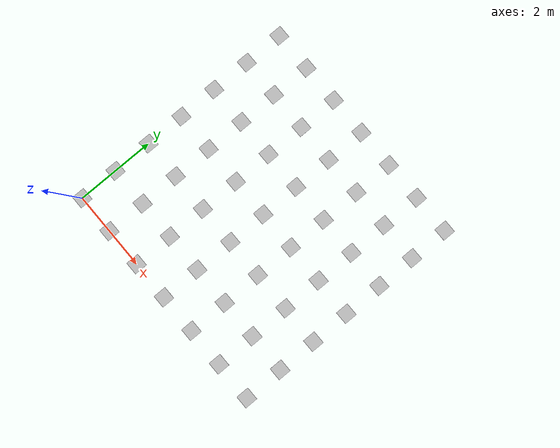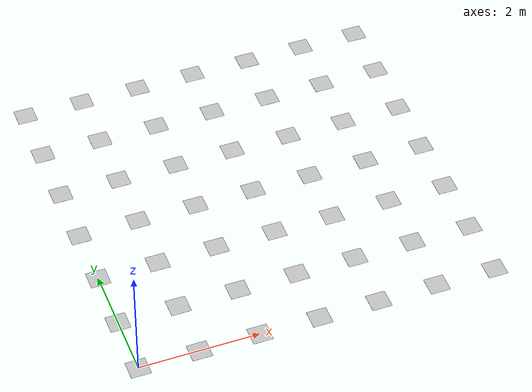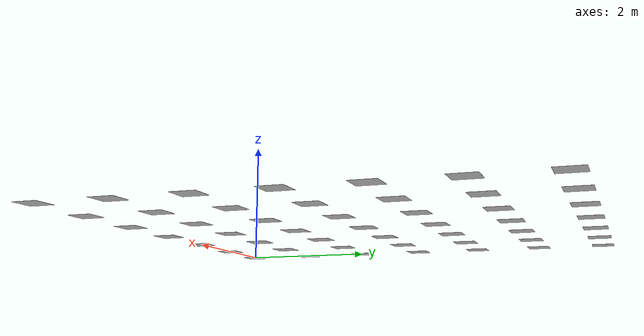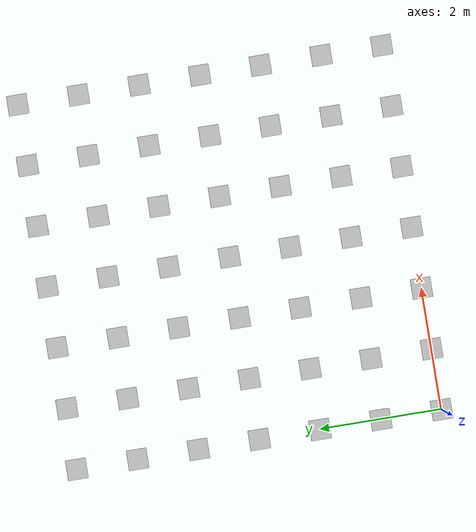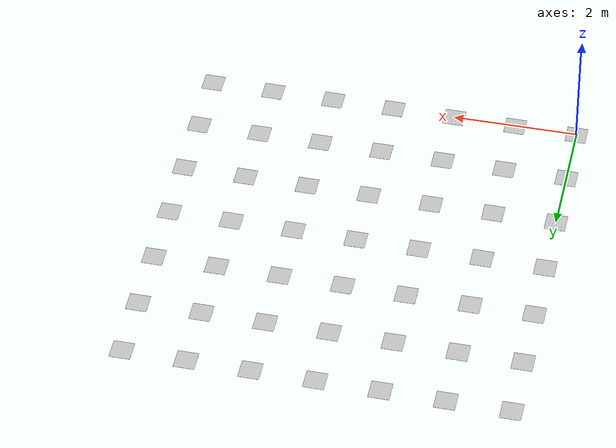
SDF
<?xml version="1.0"?>
<sdf version="1.5">
    <model name="aruco_2_99">
        <static>true</static>
        <link name="aruco_2_99_link">

<visual name="visual_marker_2_0">
    <pose>0.0 6.0 0.0 0.0 0.0 1.57079632679</pose>
    <cast_shadows>false</cast_shadows>
    <geometry>
        <box>
            <size>0.33 0.33 1e-3</size>
        </box>
    </geometry>
    <material>
        <script>
            <uri>model://aruco_cmit_txt/materials/scripts</uri>
            <uri>model://aruco_cmit_txt/materials/textures</uri>
            <name>aruco/marker_2_0</name>
        </script>
    </material>
</visual>

<visual name="visual_marker_2_1">
    <pose>1.0 6.0 0.0 0.0 0.0 1.57079632679</pose>
    <cast_shadows>false</cast_shadows>
    <geometry>
        <box>
            <size>0.33 0.33 1e-3</size>
        </box>
    </geometry>
    <material>
        <script>
            <uri>model://aruco_cmit_txt/materials/scripts</uri>
            <uri>model://aruco_cmit_txt/materials/textures</uri>
            <name>aruco/marker_2_1</name>
        </script>
    </material>
</visual>

<visual name="visual_marker_2_2">
    <pose>2.0 6.0 0.0 0.0 0.0 1.57079632679</pose>
    <cast_shadows>false</cast_shadows>
    <geometry>
        <box>
            <size>0.33 0.33 1e-3</size>
        </box>
    </geometry>
    <material>
        <script>
            <uri>model://aruco_cmit_txt/materials/scripts</uri>
            <uri>model://aruco_cmit_txt/materials/textures</uri>
            <name>aruco/marker_2_2</name>
        </script>
    </material>
</visual>

<visual name="visual_marker_2_3">
    <pose>3.0 6.0 0.0 0.0 0.0 1.57079632679</pose>
    <cast_shadows>false</cast_shadows>
    <geometry>
        <box>
            <size>0.33 0.33 1e-3</size>
        </box>
    </geometry>
    <material>
        <script>
            <uri>model://aruco_cmit_txt/materials/scripts</uri>
            <uri>model://aruco_cmit_txt/materials/textures</uri>
            <name>aruco/marker_2_3</name>
        </script>
    </material>
</visual>

<visual name="visual_marker_2_4">
    <pose>4.0 6.0 0.0 0.0 0.0 1.57079632679</pose>
    <cast_shadows>false</cast_shadows>
    <geometry>
        <box>
            <size>0.33 0.33 1e-3</size>
        </box>
    </geometry>
    <material>
        <script>
            <uri>model://aruco_cmit_txt/materials/scripts</uri>
            <uri>model://aruco_cmit_txt/materials/textures</uri>
            <name>aruco/marker_2_4</name>
        </script>
    </material>
</visual>

<visual name="visual_marker_2_5">
    <pose>5.0 6.0 0.0 0.0 0.0 1.57079632679</pose>
    <cast_shadows>false</cast_shadows>
    <geometry>
        <box>
            <size>0.33 0.33 1e-3</size>
        </box>
    </geometry>
    <material>
        <script>
            <uri>model://aruco_cmit_txt/materials/scripts</uri>
            <uri>model://aruco_cmit_txt/materials/textures</uri>
            <name>aruco/marker_2_5</name>
        </script>
    </material>
</visual>

<visual name="visual_marker_2_6">
    <pose>6.0 6.0 0.0 0.0 0.0 1.57079632679</pose>
    <cast_shadows>false</cast_shadows>
    <geometry>
        <box>
            <size>0.33 0.33 1e-3</size>
        </box>
    </geometry>
    <material>
        <script>
            <uri>model://aruco_cmit_txt/materials/scripts</uri>
            <uri>model://aruco_cmit_txt/materials/textures</uri>
            <name>aruco/marker_2_6</name>
        </script>
    </material>
</visual>

<visual name="visual_marker_2_7">
    <pose>0.0 5.0 0.0 0.0 0.0 1.57079632679</pose>
    <cast_shadows>false</cast_shadows>
    <geometry>
        <box>
            <size>0.33 0.33 1e-3</size>
        </box>
    </geometry>
    <material>
        <script>
            <uri>model://aruco_cmit_txt/materials/scripts</uri>
            <uri>model://aruco_cmit_txt/materials/textures</uri>
            <name>aruco/marker_2_7</name>
        </script>
    </material>
</visual>

<visual name="visual_marker_2_8">
    <pose>1.0 5.0 0.0 0.0 0.0 1.57079632679</pose>
    <cast_shadows>false</cast_shadows>
    <geometry>
        <box>
            <size>0.33 0.33 1e-3</size>
        </box>
    </geometry>
    <material>
        <script>
            <uri>model://aruco_cmit_txt/materials/scripts</uri>
            <uri>model://aruco_cmit_txt/materials/textures</uri>
            <name>aruco/marker_2_8</name>
        </script>
    </material>
</visual>

<visual name="visual_marker_2_9">
    <pose>2.0 5.0 0.0 0.0 0.0 1.57079632679</pose>
    <cast_shadows>false</cast_shadows>
    <geometry>
        <box>
            <size>0.33 0.33 1e-3</size>
        </box>
    </geometry>
    <material>
        <script>
            <uri>model://aruco_cmit_txt/materials/scripts</uri>
            <uri>model://aruco_cmit_txt/materials/textures</uri>
            <name>aruco/marker_2_9</name>
        </script>
    </material>
</visual>

<visual name="visual_marker_2_10">
    <pose>3.0 5.0 0.0 0.0 0.0 1.57079632679</pose>
    <cast_shadows>false</cast_shadows>
    <geometry>
        <box>
            <size>0.33 0.33 1e-3</size>
        </box>
    </geometry>
    <material>
        <script>
            <uri>model://aruco_cmit_txt/materials/scripts</uri>
            <uri>model://aruco_cmit_txt/materials/textures</uri>
            <name>aruco/marker_2_10</name>
        </script>
    </material>
</visual>

<visual name="visual_marker_2_11">
    <pose>4.0 5.0 0.0 0.0 0.0 1.57079632679</pose>
    <cast_shadows>false</cast_shadows>
    <geometry>
        <box>
           <size>0.33 0.33 1e-3</size>
        </box>
    </geometry>
    <material>
        <script>
            <uri>model://aruco_cmit_txt/materials/scripts</uri>
            <uri>model://aruco_cmit_txt/materials/textures</uri>
            <name>aruco/marker_2_11</name>
        </script>
    </material>
</visual>

<visual name="visual_marker_2_12">
    <pose>5.0 5.0 0.0 0.0 0.0 1.57079632679</pose>
    <cast_shadows>false</cast_shadows>
    <geometry>
        <box>
            <size>0.33 0.33 1e-3</size>
        </box>
    </geometry>
    <material>
        <script>
            <uri>model://aruco_cmit_txt/materials/scripts</uri>
            <uri>model://aruco_cmit_txt/materials/textures</uri>
            <name>aruco/marker_2_12</name>
        </script>
    </material>
</visual>

<visual name="visual_marker_2_13">
    <pose>6.0 5.0 0.0 0.0 0.0 1.57079632679</pose>
    <cast_shadows>false</cast_shadows>
    <geometry>
        <box>
            <size>0.33 0.33 1e-3</size>
        </box>
    </geometry>
    <material>
        <script>
            <uri>model://aruco_cmit_txt/materials/scripts</uri>
            <uri>model://aruco_cmit_txt/materials/textures</uri>
            <name>aruco/marker_2_13</name>
        </script>
    </material>
</visual>

<visual name="visual_marker_2_14">
    <pose>0.0 4.0 0.0 0.0 0.0 1.57079632679</pose>
    <cast_shadows>false</cast_shadows>
    <geometry>
        <box>
            <size>0.33 0.33 1e-3</size>
        </box>
    </geometry>
    <material>
        <script>
            <uri>model://aruco_cmit_txt/materials/scripts</uri>
            <uri>model://aruco_cmit_txt/materials/textures</uri>
            <name>aruco/marker_2_14</name>
        </script>
    </material>
</visual>

<visual name="visual_marker_2_15">
    <pose>1.0 4.0 0.0 0.0 0.0 1.57079632679</pose>
    <cast_shadows>false</cast_shadows>
    <geometry>
        <box>
            <size>0.33 0.33 1e-3</size>
        </box>
    </geometry>
    <material>
        <script>
            <uri>model://aruco_cmit_txt/materials/scripts</uri>
            <uri>model://aruco_cmit_txt/materials/textures</uri>
            <name>aruco/marker_2_15</name>
        </script>
    </material>
</visual>

<visual name="visual_marker_2_16">
    <pose>2.0 4.0 0.0 0.0 0.0 1.57079632679</pose>
    <cast_shadows>false</cast_shadows>
    <geometry>
        <box>
            <size>0.33 0.33 1e-3</size>
        </box>
    </geometry>
    <material>
        <script>
            <uri>model://aruco_cmit_txt/materials/scripts</uri>
            <uri>model://aruco_cmit_txt/materials/textures</uri>
            <name>aruco/marker_2_16</name>
        </script>
    </material>
</visual>

<visual name="visual_marker_2_17">
    <pose>3.0 4.0 0.0 0.0 0.0 1.57079632679</pose>
    <cast_shadows>false</cast_shadows>
    <geometry>
        <box>
            <size>0.33 0.33 1e-3</size>
        </box>
    </geometry>
    <material>
        <script>
            <uri>model://aruco_cmit_txt/materials/scripts</uri>
            <uri>model://aruco_cmit_txt/materials/textures</uri>
            <name>aruco/marker_2_17</name>
        </script>
    </material>
</visual>

<visual name="visual_marker_2_18">
    <pose>4.0 4.0 0.0 0.0 0.0 1.57079632679</pose>
    <cast_shadows>false</cast_shadows>
    <geometry>
        <box>
            <size>0.33 0.33 1e-3</size>
        </box>
    </geometry>
    <material>
        <script>
            <uri>model://aruco_cmit_txt/materials/scripts</uri>
            <uri>model://aruco_cmit_txt/materials/textures</uri>
            <name>aruco/marker_2_18</name>
        </script>
    </material>
</visual>

<visual name="visual_marker_2_19">
    <pose>5.0 4.0 0.0 0.0 0.0 1.57079632679</pose>
    <cast_shadows>false</cast_shadows>
    <geometry>
        <box>
            <size>0.33 0.33 1e-3</size>
        </box>
    </geometry>
    <material>
        <script>
            <uri>model://aruco_cmit_txt/materials/scripts</uri>
            <uri>model://aruco_cmit_txt/materials/textures</uri>
            <name>aruco/marker_2_19</name>
        </script>
    </material>
</visual>

<visual name="visual_marker_2_20">
    <pose>6.0 4.0 0.0 0.0 0.0 1.57079632679</pose>
    <cast_shadows>false</cast_shadows>
    <geometry>
        <box>
            <size>0.33 0.33 1e-3</size>
        </box>
    </geometry>
    <material>
        <script>
            <uri>model://aruco_cmit_txt/materials/scripts</uri>
            <uri>model://aruco_cmit_txt/materials/textures</uri>
            <name>aruco/marker_2_20</name>
        </script>
    </material>
</visual>

<visual name="visual_marker_2_21">
    <pose>0.0 3.0 0.0 0.0 0.0 1.57079632679</pose>
    <cast_shadows>false</cast_shadows>
    <geometry>
        <box>
            <size>0.33 0.33 1e-3</size>
        </box>
    </geometry>
    <material>
        <script>
            <uri>model://aruco_cmit_txt/materials/scripts</uri>
            <uri>model://aruco_cmit_txt/materials/textures</uri>
            <name>aruco/marker_2_21</name>
        </script>
    </material>
</visual>

<visual name="visual_marker_2_22">
    <pose>1.0 3.0 0.0 0.0 0.0 1.57079632679</pose>
    <cast_shadows>false</cast_shadows>
    <geometry>
        <box>
            <size>0.33 0.33 1e-3</size>
        </box>
    </geometry>
    <material>
        <script>
            <uri>model://aruco_cmit_txt/materials/scripts</uri>
            <uri>model://aruco_cmit_txt/materials/textures</uri>
            <name>aruco/marker_2_22</name>
        </script>
    </material>
</visual>

<visual name="visual_marker_2_23">
    <pose>2.0 3.0 0.0 0.0 0.0 1.57079632679</pose>
    <cast_shadows>false</cast_shadows>
    <geometry>
        <box>
            <size>0.33 0.33 1e-3</size>
        </box>
    </geometry>
    <material>
        <script>
            <uri>model://aruco_cmit_txt/materials/scripts</uri>
            <uri>model://aruco_cmit_txt/materials/textures</uri>
            <name>aruco/marker_2_23</name>
        </script>
    </material>
</visual>

<visual name="visual_marker_2_24">
    <pose>3.0 3.0 0.0 0.0 0.0 1.57079632679</pose>
    <cast_shadows>false</cast_shadows>
    <geometry>
        <box>
            <size>0.33 0.33 1e-3</size>
        </box>
    </geometry>
    <material>
        <script>
            <uri>model://aruco_cmit_txt/materials/scripts</uri>
            <uri>model://aruco_cmit_txt/materials/textures</uri>
            <name>aruco/marker_2_24</name>
        </script>
    </material>
</visual>

<visual name="visual_marker_2_25">
    <pose>4.0 3.0 0.0 0.0 0.0 1.57079632679</pose>
    <cast_shadows>false</cast_shadows>
    <geometry>
        <box>
            <size>0.33 0.33 1e-3</size>
        </box>
    </geometry>
    <material>
        <script>
            <uri>model://aruco_cmit_txt/materials/scripts</uri>
            <uri>model://aruco_cmit_txt/materials/textures</uri>
            <name>aruco/marker_2_25</name>
        </script>
    </material>
</visual>

<visual name="visual_marker_2_26">
    <pose>5.0 3.0 0.0 0.0 0.0 1.57079632679</pose>
    <cast_shadows>false</cast_shadows>
    <geometry>
        <box>
            <size>0.33 0.33 1e-3</size>
        </box>
    </geometry>
    <material>
        <script>
            <uri>model://aruco_cmit_txt/materials/scripts</uri>
            <uri>model://aruco_cmit_txt/materials/textures</uri>
            <name>aruco/marker_2_26</name>
        </script>
    </material>
</visual>

<visual name="visual_marker_2_27">
    <pose>6.0 3.0 0.0 0.0 0.0 1.57079632679</pose>
    <cast_shadows>false</cast_shadows>
    <geometry>
        <box>
            <size>0.33 0.33 1e-3</size>
        </box>
    </geometry>
    <material>
        <script>
            <uri>model://aruco_cmit_txt/materials/scripts</uri>
            <uri>model://aruco_cmit_txt/materials/textures</uri>
            <name>aruco/marker_2_27</name>
        </script>
    </material>
</visual>

<visual name="visual_marker_2_28">
    <pose>0.0 2.0 0.0 0.0 0.0 1.57079632679</pose>
    <cast_shadows>false</cast_shadows>
    <geometry>
        <box>
            <size>0.33 0.33 1e-3</size>
        </box>
    </geometry>
    <material>
        <script>
            <uri>model://aruco_cmit_txt/materials/scripts</uri>
            <uri>model://aruco_cmit_txt/materials/textures</uri>
            <name>aruco/marker_2_28</name>
        </script>
    </material>
</visual>

<visual name="visual_marker_2_29">
    <pose>1.0 2.0 0.0 0.0 0.0 1.57079632679</pose>
    <cast_shadows>false</cast_shadows>
    <geometry>
        <box>
            <size>0.33 0.33 1e-3</size>
        </box>
    </geometry>
    <material>
        <script>
            <uri>model://aruco_cmit_txt/materials/scripts</uri>
            <uri>model://aruco_cmit_txt/materials/textures</uri>
            <name>aruco/marker_2_29</name>
        </script>
    </material>
</visual>

<visual name="visual_marker_2_30">
    <pose>2.0 2.0 0.0 0.0 0.0 1.57079632679</pose>
    <cast_shadows>false</cast_shadows>
    <geometry>
        <box>
            <size>0.33 0.33 1e-3</size>
        </box>
    </geometry>
    <material>
        <script>
            <uri>model://aruco_cmit_txt/materials/scripts</uri>
            <uri>model://aruco_cmit_txt/materials/textures</uri>
            <name>aruco/marker_2_30</name>
        </script>
    </material>
</visual>

<visual name="visual_marker_2_31">
    <pose>3.0 2.0 0.0 0.0 0.0 1.57079632679</pose>
    <cast_shadows>false</cast_shadows>
    <geometry>
        <box>
            <size>0.33 0.33 1e-3</size>
        </box>
    </geometry>
    <material>
        <script>
            <uri>model://aruco_cmit_txt/materials/scripts</uri>
            <uri>model://aruco_cmit_txt/materials/textures</uri>
            <name>aruco/marker_2_31</name>
        </script>
    </material>
</visual>

<visual name="visual_marker_2_32">
    <pose>4.0 2.0 0.0 0.0 0.0 1.57079632679</pose>
    <cast_shadows>false</cast_shadows>
    <geometry>
        <box>
            <size>0.33 0.33 1e-3</size>
        </box>
    </geometry>
    <material>
        <script>
            <uri>model://aruco_cmit_txt/materials/scripts</uri>
            <uri>model://aruco_cmit_txt/materials/textures</uri>
            <name>aruco/marker_2_32</name>
        </script>
    </material>
</visual>

<visual name="visual_marker_2_33">
    <pose>5.0 2.0 0.0 0.0 0.0 1.57079632679</pose>
    <cast_shadows>false</cast_shadows>
    <geometry>
        <box>
            <size>0.33 0.33 1e-3</size>
        </box>
    </geometry>
    <material>
        <script>
            <uri>model://aruco_cmit_txt/materials/scripts</uri>
            <uri>model://aruco_cmit_txt/materials/textures</uri>
            <name>aruco/marker_2_33</name>
        </script>
    </material>
</visual>

<visual name="visual_marker_2_34">
    <pose>6.0 2.0 0.0 0.0 0.0 1.57079632679</pose>
    <cast_shadows>false</cast_shadows>
    <geometry>
        <box>
            <size>0.33 0.33 1e-3</size>
        </box>
    </geometry>
    <material>
        <script>
            <uri>model://aruco_cmit_txt/materials/scripts</uri>
            <uri>model://aruco_cmit_txt/materials/textures</uri>
            <name>aruco/marker_2_34</name>
        </script>
    </material>
</visual>

<visual name="visual_marker_2_35">
    <pose>0.0 1.0 0.0 0.0 0.0 1.57079632679</pose>
    <cast_shadows>false</cast_shadows>
    <geometry>
        <box>
            <size>0.33 0.33 1e-3</size>
        </box>
    </geometry>
    <material>
        <script>
            <uri>model://aruco_cmit_txt/materials/scripts</uri>
            <uri>model://aruco_cmit_txt/materials/textures</uri>
            <name>aruco/marker_2_35</name>
        </script>
    </material>
</visual>

<visual name="visual_marker_2_36">
    <pose>1.0 1.0 0.0 0.0 0.0 1.57079632679</pose>
    <cast_shadows>false</cast_shadows>
    <geometry>
        <box>
            <size>0.33 0.33 1e-3</size>
        </box>
    </geometry>
    <material>
        <script>
            <uri>model://aruco_cmit_txt/materials/scripts</uri>
            <uri>model://aruco_cmit_txt/materials/textures</uri>
            <name>aruco/marker_2_36</name>
        </script>
    </material>
</visual>

<visual name="visual_marker_2_37">
    <pose>2.0 1.0 0.0 0.0 0.0 1.57079632679</pose>
    <cast_shadows>false</cast_shadows>
    <geometry>
        <box>
            <size>0.33 0.33 1e-3</size>
        </box>
    </geometry>
    <material>
        <script>
            <uri>model://aruco_cmit_txt/materials/scripts</uri>
            <uri>model://aruco_cmit_txt/materials/textures</uri>
            <name>aruco/marker_2_37</name>
        </script>
    </material>
</visual>

<visual name="visual_marker_2_38">
    <pose>3.0 1.0 0.0 0.0 0.0 1.57079632679</pose>
    <cast_shadows>false</cast_shadows>
    <geometry>
        <box>
            <size>0.33 0.33 1e-3</size>
        </box>
    </geometry>
    <material>
        <script>
            <uri>model://aruco_cmit_txt/materials/scripts</uri>
            <uri>model://aruco_cmit_txt/materials/textures</uri>
            <name>aruco/marker_2_38</name>
        </script>
    </material>
</visual>

<visual name="visual_marker_2_39">
    <pose>4.0 1.0 0.0 0.0 0.0 1.57079632679</pose>
    <cast_shadows>false</cast_shadows>
    <geometry>
        <box>
            <size>0.33 0.33 1e-3</size>
        </box>
    </geometry>
    <material>
        <script>
            <uri>model://aruco_cmit_txt/materials/scripts</uri>
            <uri>model://aruco_cmit_txt/materials/textures</uri>
            <name>aruco/marker_2_39</name>
        </script>
    </material>
</visual>

<visual name="visual_marker_2_40">
    <pose>5.0 1.0 0.0 0.0 0.0 1.57079632679</pose>
    <cast_shadows>false</cast_shadows>
    <geometry>
        <box>
            <size>0.33 0.33 1e-3</size>
        </box>
    </geometry>
    <material>
        <script>
            <uri>model://aruco_cmit_txt/materials/scripts</uri>
            <uri>model://aruco_cmit_txt/materials/textures</uri>
            <name>aruco/marker_2_40</name>
        </script>
    </material>
</visual>

<visual name="visual_marker_2_41">
    <pose>6.0 1.0 0.0 0.0 0.0 1.57079632679</pose>
    <cast_shadows>false</cast_shadows>
    <geometry>
        <box>
            <size>0.33 0.33 1e-3</size>
        </box>
    </geometry>
    <material>
        <script>
            <uri>model://aruco_cmit_txt/materials/scripts</uri>
            <uri>model://aruco_cmit_txt/materials/textures</uri>
            <name>aruco/marker_2_41</name>
        </script>
    </material>
</visual>

<visual name="visual_marker_2_42">
    <pose>0.0 0.0 0.0 0.0 0.0 1.57079632679</pose>
    <cast_shadows>false</cast_shadows>
    <geometry>
        <box>
            <size>0.33 0.33 1e-3</size>
        </box>
    </geometry>
    <material>
        <script>
            <uri>model://aruco_cmit_txt/materials/scripts</uri>
            <uri>model://aruco_cmit_txt/materials/textures</uri>
            <name>aruco/marker_2_42</name>
        </script>
    </material>
</visual>

<visual name="visual_marker_2_43">
    <pose>1.0 0.0 0.0 0.0 0.0 1.57079632679</pose>
    <cast_shadows>false</cast_shadows>
    <geometry>
        <box>
            <size>0.33 0.33 1e-3</size>
        </box>
    </geometry>
    <material>
        <script>
            <uri>model://aruco_cmit_txt/materials/scripts</uri>
            <uri>model://aruco_cmit_txt/materials/textures</uri>
            <name>aruco/marker_2_43</name>
        </script>
    </material>
</visual>

<visual name="visual_marker_2_44">
    <pose>2.0 0.0 0.0 0.0 0.0 1.57079632679</pose>
    <cast_shadows>false</cast_shadows>
    <geometry>
        <box>
            <size>0.33 0.33 1e-3</size>
        </box>
    </geometry>
    <material>
        <script>
            <uri>model://aruco_cmit_txt/materials/scripts</uri>
            <uri>model://aruco_cmit_txt/materials/textures</uri>
            <name>aruco/marker_2_44</name>
        </script>
    </material>
</visual>

<visual name="visual_marker_2_45">
    <pose>3.0 0.0 0.0 0.0 0.0 1.57079632679</pose>
    <cast_shadows>false</cast_shadows>
    <geometry>
        <box>
            <size>0.33 0.33 1e-3</size>
        </box>
    </geometry>
    <material>
        <script>
            <uri>model://aruco_cmit_txt/materials/scripts</uri>
            <uri>model://aruco_cmit_txt/materials/textures</uri>
            <name>aruco/marker_2_45</name>
        </script>
    </material>
</visual>

<visual name="visual_marker_2_46">
    <pose>4.0 0.0 0.0 0.0 0.0 1.57079632679</pose>
    <cast_shadows>false</cast_shadows>
    <geometry>
        <box>
            <size>0.33 0.33 1e-3</size>
        </box>
    </geometry>
    <material>
        <script>
            <uri>model://aruco_cmit_txt/materials/scripts</uri>
            <uri>model://aruco_cmit_txt/materials/textures</uri>
            <name>aruco/marker_2_46</name>
        </script>
    </material>
</visual>

<visual name="visual_marker_2_47">
    <pose>5.0 0.0 0.0 0.0 0.0 1.57079632679</pose>
    <cast_shadows>false</cast_shadows>
    <geometry>
        <box>
            <size>0.33 0.33 1e-3</size>
        </box>
    </geometry>
    <material>
        <script>
            <uri>model://aruco_cmit_txt/materials/scripts</uri>
            <uri>model://aruco_cmit_txt/materials/textures</uri>
            <name>aruco/marker_2_47</name>
        </script>
    </material>
</visual>

<visual name="visual_marker_2_48">
    <pose>6.0 0.0 0.0 0.0 0.0 1.57079632679</pose>
    <cast_shadows>false</cast_shadows>
    <geometry>
        <box>
            <size>0.33 0.33 1e-3</size>
        </box>
    </geometry>
    <material>
        <script>
            <uri>model://aruco_cmit_txt/materials/scripts</uri>
            <uri>model://aruco_cmit_txt/materials/textures</uri>
            <name>aruco/marker_2_48</name>
        </script>
    </material>
</visual>

        </link>
    </model>
</sdf>
